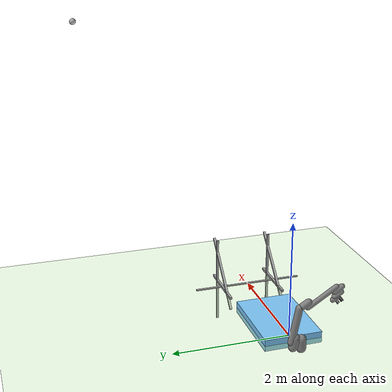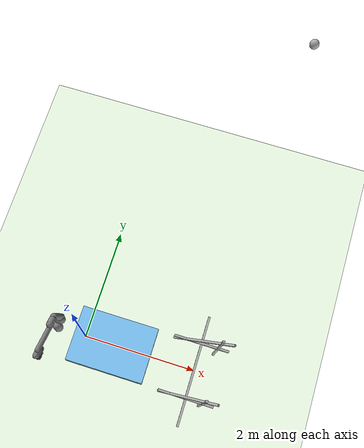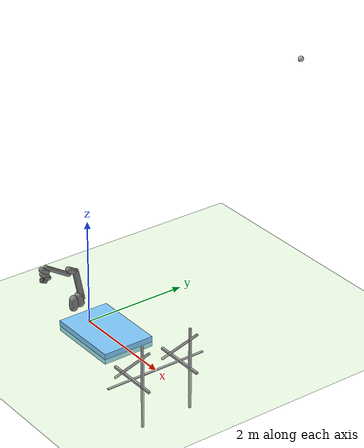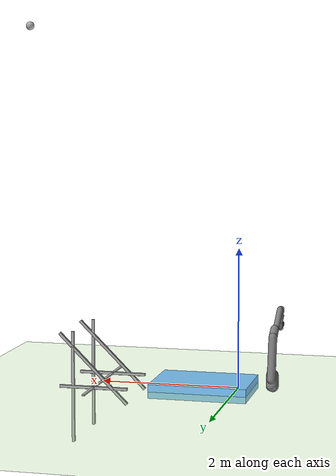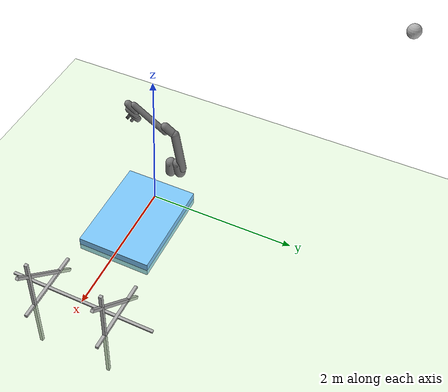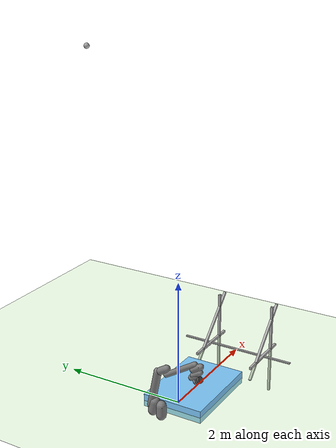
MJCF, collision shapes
<mujoco model="ur10e_sampling">
<option gravity="0 0 -9.81" timestep="0.002" solver="Newton"/>
  <compiler angle="radian" meshdir="assets" autolimits="true"/>

  <default>
    <default class="ur10e">
      <material specular="0.5" shininess="0.25"/>
      <joint axis="0 1 0" range="-6.28319 6.28319" armature="0.1"/>
      <position ctrlrange="-6.2831 6.2831"/>
      <general biastype="affine" ctrlrange="-6.2831 6.2831" gainprm="5000" biasprm="0 -5000 -500"/>
      <default class="size4">
        <joint damping="10"/>
        <general forcerange="-330 330"/>
      </default>
      <default class="size3">
        <joint damping="5"/>
        <general forcerange="-150 150"/>
        <default class="size3_limited">
          <joint range="-3.1415 3.1415"/>
          <general ctrlrange="-3.1415 3.1415"/>
        </default>
      </default>
      <default class="size2">
        <joint damping="2"/>
        <general forcerange="-56 56"/>
      </default>
      <default class="visual">
        <geom type="mesh" contype="0" conaffinity="0" group="2"/>
      </default>
      <default class="collision">
        <geom type="capsule" group="3"/>
        <default class="eef_collision">
          <geom type="cylinder"/>
        </default>
      </default>
      <site size="0.001" rgba="0.5 0.5 0.5 0.3" group="4"/>
    </default>
  </default>

  <asset>
    <material class="ur10e" name="black" rgba="0.033 0.033 0.033 1"/>
    <material class="ur10e" name="jointgray" rgba="0.278 0.278 0.278 1"/>
    <material class="ur10e" name="linkgray" rgba="0.82 0.82 0.82 1"/>
    <material name="metal_material" rgba="0.7 0.7 0.7 1" specular="0.6" shininess="0.4"/>
    <material class="ur10e" name="urblue" rgba="0.49 0.678 0.8 1"/>
    <material name="green_transparent" rgba="0.8 1 0.7 1"/>
    <material name="vacuum_gripper_material" rgba="0.3 0.3 0.3 1" specular="0.5" shininess="0.2"/>
    <material name="glass_material" rgba="0.5 0.8 1 0.3" specular="0.8"/>
    <material name="steel_material" rgba="0.7 0.7 0.7 1" specular="0.6" shininess="0.4"/>
    <mesh file="base_0.obj"/>
    <mesh file="base_1.obj"/>
    <mesh file="shoulder_0.obj"/>
    <mesh file="shoulder_1.obj"/>
    <mesh file="shoulder_2.obj"/>
    <mesh file="upperarm_0.obj"/>
    <mesh file="upperarm_1.obj"/>
    <mesh file="upperarm_2.obj"/>
    <mesh file="upperarm_3.obj"/>
    <mesh file="forearm_0.obj"/>
    <mesh file="forearm_1.obj"/>
    <mesh file="forearm_2.obj"/>
    <mesh file="forearm_3.obj"/>
    <mesh file="wrist1_0.obj"/>
    <mesh file="wrist1_1.obj"/>
    <mesh file="wrist1_2.obj"/>
    <mesh file="wrist2_0.obj"/>
    <mesh file="wrist2_1.obj"/>
    <mesh file="wrist2_2.obj"/>
    <mesh file="wrist3.obj"/>
  </asset>

  <worldbody>
  <body name="falling_ball" pos="2 3 5">
    <inertial pos="0 0 0" mass="0.5" diaginertia="0.001 0.001 0.001"/>
    <geom name="ball" type="sphere" size="0.05" material="metal_material" contype="1" conaffinity="1"/>
    </body>
  <geom name="ground" type="plane" pos="0 0 0" size="5 5 0.1" material="green_transparent" contype="1" conaffinity="1"
      solref="0.02 1" solimp="0.9 0.95 0.01" friction="1 0.005 0.0001"/>
  <body name="glass_frame" pos="0.5 0 0">
    <geom name="glass_panel" type="box" size="0.7 0.5 0.1" material="glass_material" contype="1" conaffinity="1"
          solref="0.02 1" solimp="0.9 0.95 0.01"/>
    <site name="glass_site" pos="0 0 0" size="0.01" rgba="0 1 0 1"/>
  </body>
  <body name="frame_base" pos="2 0 0" quat="-0.7 0 0 0.7">
    <inertial pos="0 0 0" mass="1.0" diaginertia="0.001 0.001 0.001"/>
    <geom name="base_beam" type="box" size="1 0.02 0.01" pos="0 0 0.01" material="metal_material" contype="1" conaffinity="1"
      solref="0.02 1" solimp="0.9 0.95 0.01" friction="1 0.005 0.0001"/>
    <body name="horizontal_support" pos="0 0 0.01">
      <inertial pos="0 0 0" mass="1.0" diaginertia="0.001 0.001 0.001"/>
      <geom name="horizontal_beam" type="box" size="0.02 0.5 0.02" pos="0.5 0 0" material="metal_material" quat="0.7 0 0.7 0" contype="1" conaffinity="1"
      solref="0.02 1" solimp="0.9 0.95 0.01" friction="1 0.005 0.0001" />

      <body name="angled_bar1" pos="0.2 0 0.1">
        <inertial pos="0 0 0" mass="1.0" diaginertia="0.001 0.001 0.001"/>
        <geom name="angled_beam1" type="box" size="0.02 0.7 0.02" pos="0.3 0 0.175" quat="0.92 0.38 0 0" material="metal_material" contype="1" conaffinity="1"
      solref="0.02 1" solimp="0.9 0.95 0.01" friction="1 0.005 0.0001"/>
      </body>

      <body name="vertical_support" pos="0 0 0">
        <inertial pos="0 0 0" mass="1.0" diaginertia="0.001 0.001 0.001"/>
        <geom name="vertical_beam" type="box" size="0.02 0.8 0.02" pos="0.5 0.3 0" material="metal_material" quat="0 0 0.7 0.7" contype="1" conaffinity="1"
      solref="0.02 1" solimp="0.9 0.95 0.01" friction="1 0.005 0.0001"/>
      </body>
    </body>
    <body name="horizontal_support1" pos="0 0 0.01">
      <inertial pos="0 0 0" mass="1.0" diaginertia="0.001 0.001 0.001"/>
      <geom name="horizontal_beam1" type="box" size="0.02 0.5 0.02" pos="-0.5 0 0" material="metal_material" quat="0.7 0 0.7 0" contype="1" conaffinity="1"
      solref="0.02 1" solimp="0.9 0.95 0.01" friction="1 0.005 0.0001" />

      <body name="angled_bar2" pos="-0.2 0 0.1">
        <inertial pos="0 0 0" mass="1.0" diaginertia="0.001 0.001 0.001"/>
        <geom name="angled_beam2" type="box" size="0.02 0.7 0.02" pos="-0.3 0 0.175" quat="0.92 0.38 0 0" material="metal_material" contype="1" conaffinity="1"
      solref="0.02 1" solimp="0.9 0.95 0.01" friction="1 0.005 0.0001"/>
      </body>

      <body name="vertical_support1" pos="0 0 0">
        <inertial pos="0 0 0" mass="1.0" diaginertia="0.001 0.001 0.001"/>
        <geom name="vertical_beam1" type="box" size="0.02 0.8 0.02" pos="-0.5 0.3 0" material="metal_material" quat="0 0 0.7 0.7" contype="1" conaffinity="1"
      solref="0.02 1" solimp="0.9 0.95 0.01" friction="1 0.005 0.0001"/>
      </body>
      </body>
  </body>
    <body name="base" pos="-0.5 0 0" quat="0.5 0 0 0" childclass="ur10e">
      <inertial mass="4.0" pos="0 0 0" diaginertia="0.0061063308908 0.0061063308908 0.01125"/>
      <geom mesh="base_0" material="black" class="visual"/>
      <geom mesh="base_1" material="jointgray" class="visual"/>
      <body name="shoulder_link" pos="0 0 0.181">
        <inertial pos="0 0 0" mass="7.778" diaginertia="0.0314743 0.0314743 0.0218756"/>
        <joint name="shoulder_pan_joint" class="size4" axis="0 0 1"/>
        <geom mesh="shoulder_0" material="urblue" class="visual"/>
        <geom mesh="shoulder_1" material="black" class="visual"/>
        <geom mesh="shoulder_2" material="jointgray" class="visual"/>
        <geom class="collision" size="0.078 0.08" pos="0 0 -0.05"/>
        <body name="upper_arm_link" pos="0 0.176 0" quat="1 0.1 0 0">
          <inertial pos="0 0 0.3065" mass="12.93" diaginertia="0.423074 0.423074 0.0363656"/>
          <joint name="shoulder_lift_joint" class="size4"/>
          <geom mesh="upperarm_0" material="black" class="visual"/>
          <geom mesh="upperarm_1" material="jointgray" class="visual"/>
          <geom mesh="upperarm_2" material="urblue" class="visual"/>
          <geom mesh="upperarm_3" material="linkgray" class="visual"/>
          <geom class="collision" pos="0 -0.05 0" quat="1 0 0 0" size="0.078 0.08"/>
          <geom class="collision" size="0.06 0.3" pos="0 0 0.3"/>
          <body name="forearm_link" pos="0 -0.137 0.613" quat="0.7 0.3 0 0">
            <inertial pos="0 0 0.2855" mass="3.87" diaginertia="0.11059 0.11059 0.0108844"/>
            <joint name="elbow_joint" class="size3_limited"/>
            <geom mesh="forearm_0" material="urblue" class="visual"/>
            <geom mesh="forearm_1" material="black" class="visual"/>
            <geom mesh="forearm_2" material="jointgray" class="visual"/>
            <geom mesh="forearm_3" material="linkgray" class="visual"/>
            <geom class="collision" pos="0 0.08 0" quat="1 0 0 0" size="0.058 0.065"/>
            <geom class="collision" size="0.043 0.28" pos="0 0 0.29"/>
            <body name="wrist_1_link" pos="0 0 0.571" quat="0 1 0 0">
              <inertial pos="0 0.135 0" mass="1.96" diaginertia="0.0055125 0.00510825 0.00510825"/>
              <joint name="wrist_1_joint" class="size2"/>
              <geom mesh="wrist1_0" material="black" class="visual"/>
              <geom mesh="wrist1_1" material="urblue" class="visual"/>
              <geom mesh="wrist1_2" material="jointgray" class="visual"/>
              <geom class="collision" pos="0 0.06 0" quat="1 0 0 0" size="0.05 0.07"/>
              <body name="wrist_2_link" pos="0 0.135 0">
                <inertial pos="0 0 0.12" mass="1.96" diaginertia="0.0055125 0.00510825 0.00510825"/>
                <joint name="wrist_2_joint" axis="0 0 1" class="size2"/>
                <geom mesh="wrist2_0" material="black" class="visual"/>
                <geom mesh="wrist2_1" material="urblue" class="visual"/>
                <geom mesh="wrist2_2" material="jointgray" class="visual"/>
                <geom class="collision" size="0.046 0.065" pos="0 0 0.05"/>
                <geom class="collision" pos="0 0.028 0.12" quat="1 0 0 0" size="0.046 0.043"/>
                <body name="wrist_3_link" pos="0 0 0.12">
                  <inertial pos="0 0.092 0" mass="0.202" diaginertia="0.000204525 0.000144346 0.000144346"/>
                  <joint name="wrist_3_joint" class="size2"/>
                  <geom material="linkgray" mesh="wrist3" class="visual"/>
                  <geom class="eef_collision" pos="0 0.097 0" quat="1 0 0 0" size="0.046 0.02"/>
                  <site name="attachment_site" pos="0 0.1 0" quat="-1 0 0 1"/>
                    <body name="vacuum_gripper" pos="0 0.1 -0.07">
                      <inertial pos="0 0 0" mass="0.1" diaginertia="0.0001 0.0001 0.0001"/>
                      <geom name="gripper_geom" type="cylinder" size="0.05 0.02" material="vacuum_gripper_material" contype="1" conaffinity="1" solimp="0.95 0.95 0.01" solref="0.02 1"/>
                    </body>
                </body>
              </body>
            </body>
          </body>
        </body>
      </body>
    </body>
  </worldbody>

  <actuator>
    <general class="size4" name="shoulder_pan" joint="shoulder_pan_joint"/>
    <general class="size4" name="shoulder_lift" joint="shoulder_lift_joint"/>
    <general class="size3_limited" name="elbow" joint="elbow_joint"/>
    <general class="size2" name="wrist_1" joint="wrist_1_joint"/>
    <general class="size2" name="wrist_2" joint="wrist_2_joint"/>
    <general class="size2" name="wrist_3" joint="wrist_3_joint"/>
    <adhesion name="vacuum_grip" body="vacuum_gripper" gain="5" ctrlrange="0 1"/>
  </actuator>

<keyframe>
  <key name="home" qpos="0 0 0 0 0 0" ctrl="0 0 0 0 0 0 0"/>
</keyframe>
</mujoco>
